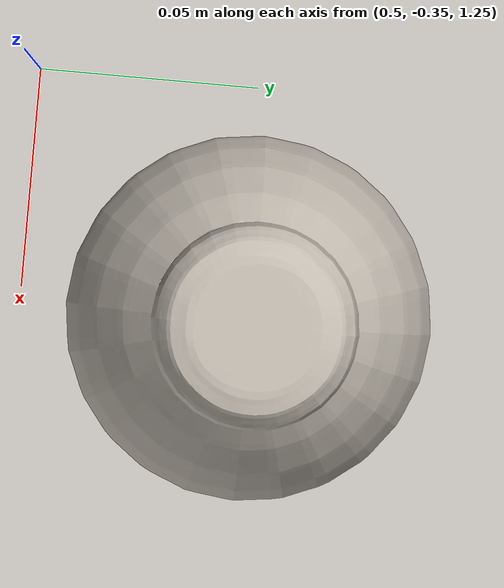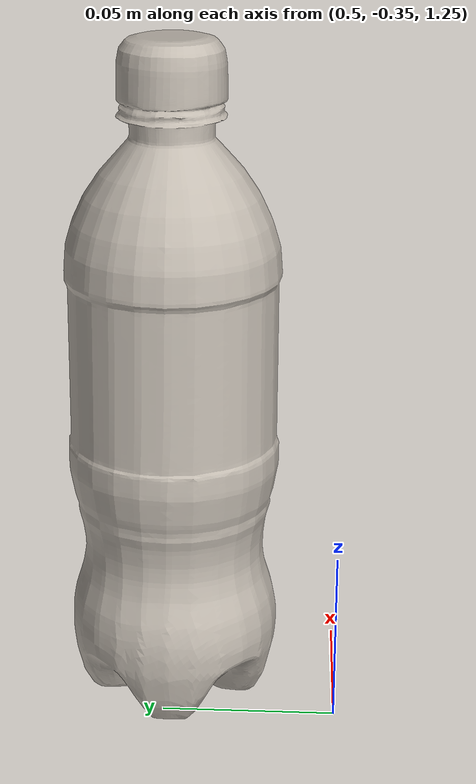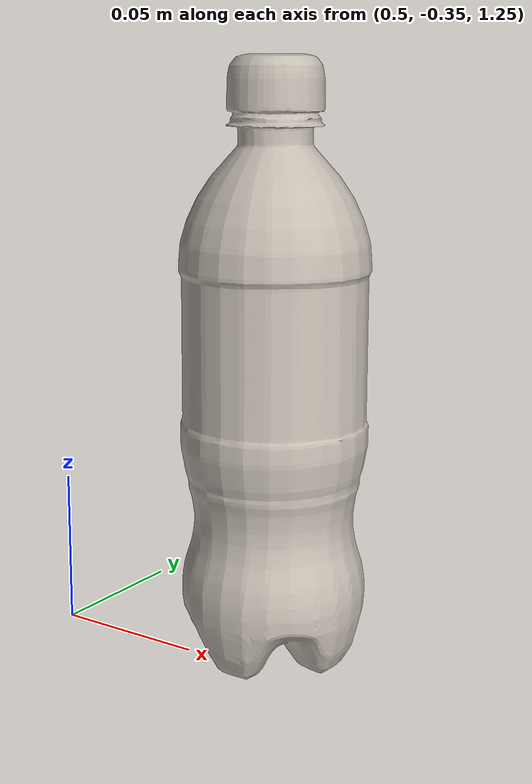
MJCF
<mujoco model="untitled">
  <default>
    <default class="pepsi_bottle_visual">
      <geom group="2" type="mesh" contype="0" conaffinity="0"/>
    </default>
    <default class="pepsi_bottle_collision">
      <geom group="3" type="mesh" solref="0.001" solimp="1 1" condim="6"/>
    </default>
  </default>
  <asset>
    <texture type="2d" name="shaded_bottle" file="../objects/bigym/pepsi_bottle/shaded.png"/>
    <material name="bottle_material.001" texture="shaded_bottle" specular="0.5" shininess="0.5"/>
    <mesh file="../objects/bigym/pepsi_bottle/untitled.obj" name="pepsi_bottle_visual_0" scale="0.11 0.11 0.11" refquat="0.707 -0.707 0.0 0.0"/>
    <mesh file="../objects/bigym/pepsi_bottle/untitled_collision_0.obj" name="pepsi_bottle_collision_0" scale="0.11 0.11 0.11" refquat="0.707 -0.707 0.0 0.0"/>
    <mesh file="../objects/bigym/pepsi_bottle/untitled_collision_1.obj" name="pepsi_bottle_collision_1" scale="0.11 0.11 0.11" refquat="0.707 -0.707 0.0 0.0"/>
    <mesh file="../objects/bigym/pepsi_bottle/untitled_collision_2.obj" name="pepsi_bottle_collision_2" scale="0.11 0.11 0.11" refquat="0.707 -0.707 0.0 0.0"/>
    <mesh file="../objects/bigym/pepsi_bottle/untitled_collision_3.obj" name="pepsi_bottle_collision_3" scale="0.11 0.11 0.11" refquat="0.707 -0.707 0.0 0.0"/>
    <mesh file="../objects/bigym/pepsi_bottle/untitled_collision_4.obj" name="pepsi_bottle_collision_4" scale="0.11 0.11 0.11" refquat="0.707 -0.707 0.0 0.0"/>
    <mesh file="../objects/bigym/pepsi_bottle/untitled_collision_5.obj" name="pepsi_bottle_collision_5" scale="0.11 0.11 0.11" refquat="0.707 -0.707 0.0 0.0"/>
    <mesh file="../objects/bigym/pepsi_bottle/hexagon.stl" name="pepsi_collision" scale="0.0335 0.0335 0.082" />
  </asset>
  <worldbody>
    <body name="pepsi_bottle" pos="0.55 -0.3 1.23">
      <freejoint/>
      <geom material="bottle_material.001" mesh="pepsi_bottle_visual_0" class="pepsi_bottle_visual"/>
      <geom mesh="pepsi_collision" pos="0 0 0.086" rgba="1 1 1 0" class="pepsi_bottle_collision" mass="0.5"/>

    </body>
  </worldbody>
</mujoco>
